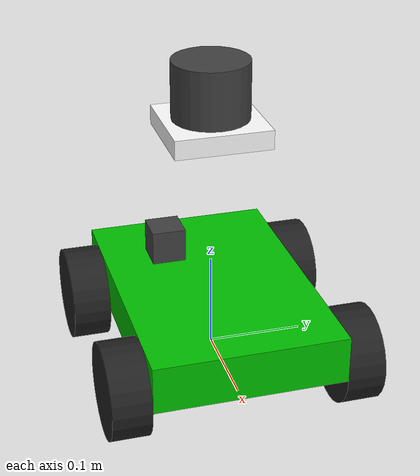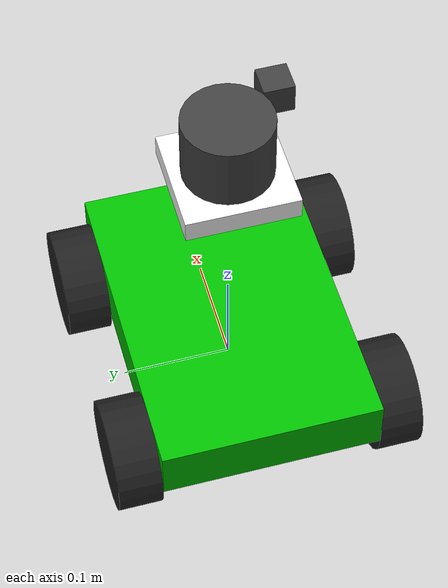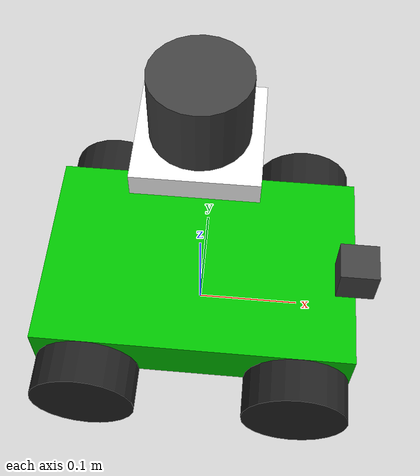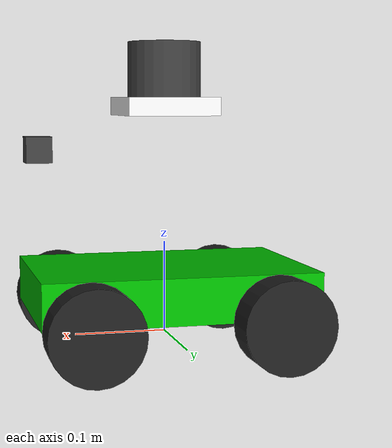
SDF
<sdf version='1.11'>
  <model name='my_robot'>
    <link name='base_footprint'>
      <inertial>
        <pose>0.0028017241379310349 -0.001724137931034483 0.079439655172413803 0 0 0</pose>
        <mass>2.3199999999999998</mass>
        <inertia>
          <ixx>0.023429374999999999</ixx>
          <ixy>0.00050879310344827588</ixy>
          <ixz>-0.0007836422413793104</ixz>
          <iyy>0.023943060344827599</iyy>
          <iyz>0.00048224137931034491</iyz>
          <izz>0.021349892241379311</izz>
        </inertia>
      </inertial>
      <collision name='base_footprint_fixed_joint_lump__base_link_collision'>
        <pose>0 0 0.050000000000000003 0 0 0</pose>
        <geometry>
          <box>
            <size>0.29999999999999999 0.20000000000000001 0.050000000000000003</size>
          </box>
        </geometry>
      </collision>
      <collision name='base_footprint_fixed_joint_lump__lidar_link_collision_1'>
        <pose>0 0 0.28999999999999998 0 0 0</pose>
        <geometry>
          <cylinder>
            <length>0.059999999999999998</length>
            <radius>0.040000000000000001</radius>
          </cylinder>
        </geometry>
        <surface>
          <contact>
            <ode/>
          </contact>
          <friction>
            <ode/>
          </friction>
        </surface>
      </collision>
      <visual name='base_footprint_fixed_joint_lump__base_link_visual'>
        <pose>0 0 0.050000000000000003 0 0 0</pose>
        <geometry>
          <box>
            <size>0.29999999999999999 0.20000000000000001 0.050000000000000003</size>
          </box>
        </geometry>
        <material>
          <diffuse>0 0.75000006 0 1</diffuse>
          <ambient>0 0.75000006 0 1</ambient>
        </material>
      </visual>
      <visual name='base_footprint_fixed_joint_lump__camera_link_visual_1'>
        <pose>0.13 -0.080000000000000002 0.20000000000000001 0 0 0</pose>
        <geometry>
          <box>
            <size>0.029999999999999999 0.029999999999999999 0.029999999999999999</size>
          </box>
        </geometry>
        <material>
          <diffuse>0.25 0.25 0.25 1</diffuse>
          <ambient>0.25 0.25 0.25 1</ambient>
        </material>
      </visual>
      <visual name='base_footprint_fixed_joint_lump__lidar_platform_visual_2'>
        <pose>0 0 0.25 0 0 0</pose>
        <geometry>
          <box>
            <size>0.10000000000000001 0.10000000000000001 0.02</size>
          </box>
        </geometry>
        <material>
          <diffuse>1 1 1 1</diffuse>
          <ambient>1 1 1 1</ambient>
        </material>
      </visual>
      <visual name='base_footprint_fixed_joint_lump__lidar_link_visual_3'>
        <pose>0 0 0.28999999999999998 0 0 0</pose>
        <geometry>
          <cylinder>
            <length>0.059999999999999998</length>
            <radius>0.040000000000000001</radius>
          </cylinder>
        </geometry>
        <material>
          <diffuse>0.25 0.25 0.25 1</diffuse>
          <ambient>0.25 0.25 0.25 1</ambient>
        </material>
      </visual>
      <sensor name='camera' type='camera'>
        <always_on>true</always_on>
        <update_rate>30</update_rate>
        <topic>/camera/image</topic>
        <camera>
          <horizontal_fov>1.3962634</horizontal_fov>
          <image>
            <width>640</width>
            <height>480</height>
            <format>R8G8B8</format>
          </image>
          <clip>
            <near>0.10000000000000001</near>
            <far>10</far>
          </clip>
        </camera>
        <pose>0.13 -0.080000000000000002 0.20000000000000001 0 0 0</pose>
        <gz_frame_id>camera_link</gz_frame_id>
      </sensor>
      <sensor name='lidar' type='gpu_lidar'>
        <always_on>true</always_on>
        <update_rate>10</update_rate>
        <topic>/my_robot/scan</topic>
        <lidar>
          <scan>
            <horizontal>
              <samples>360</samples>
              <resolution>1</resolution>
              <min_angle>-3.14</min_angle>
              <max_angle>3.14</max_angle>
            </horizontal>
          </scan>
          <range>
            <min>0.14999999999999999</min>
            <max>12</max>
            <resolution>0.01</resolution>
          </range>
        </lidar>
        <pose>0 0 0.28999999999999998 0 0 0</pose>
        <gz_frame_id>lidar_link</gz_frame_id>
      </sensor>
    </link>
    <joint name='front_left_wheel_joint' type='revolute'>
      <pose relative_to='base_footprint'>0.10000000000000001 0.12 0.025000000000000001 -1.5707 0 0</pose>
      <parent>base_footprint</parent>
      <child>front_left_wheel</child>
      <axis>
        <xyz>0 0 1</xyz>
        <limit>
          <lower>-inf</lower>
          <upper>inf</upper>
        </limit>
        <dynamics>
          <spring_reference>0</spring_reference>
          <spring_stiffness>0</spring_stiffness>
        </dynamics>
      </axis>
    </joint>
    <link name='front_left_wheel'>
      <pose relative_to='front_left_wheel_joint'>0 0 0 0 0 0</pose>
      <inertial>
        <pose>0 0 0 0 0 0</pose>
        <mass>0.29999999999999999</mass>
        <inertia>
          <ixx>0.001</ixx>
          <ixy>0</ixy>
          <ixz>0</ixz>
          <iyy>0.001</iyy>
          <iyz>0</iyz>
          <izz>0.001</izz>
        </inertia>
      </inertial>
      <collision name='front_left_wheel_collision'>
        <pose>0 0 0 0 0 0</pose>
        <geometry>
          <cylinder>
            <length>0.040000000000000001</length>
            <radius>0.050000000000000003</radius>
          </cylinder>
        </geometry>
      </collision>
      <visual name='front_left_wheel_visual'>
        <pose>0 0 0 0 0 0</pose>
        <geometry>
          <cylinder>
            <length>0.040000000000000001</length>
            <radius>0.050000000000000003</radius>
          </cylinder>
        </geometry>
        <material>
          <diffuse>0.125 0.125 0.125 1</diffuse>
          <ambient>0.125 0.125 0.125 1</ambient>
        </material>
      </visual>
    </link>
    <joint name='front_right_wheel_joint' type='revolute'>
      <pose relative_to='base_footprint'>0.10000000000000001 -0.12 0.025000000000000001 -1.5707 0 0</pose>
      <parent>base_footprint</parent>
      <child>front_right_wheel</child>
      <axis>
        <xyz>0 0 1</xyz>
        <limit>
          <lower>-inf</lower>
          <upper>inf</upper>
        </limit>
        <dynamics>
          <spring_reference>0</spring_reference>
          <spring_stiffness>0</spring_stiffness>
        </dynamics>
      </axis>
    </joint>
    <link name='front_right_wheel'>
      <pose relative_to='front_right_wheel_joint'>0 0 0 0 0 0</pose>
      <inertial>
        <pose>0 0 0 0 0 0</pose>
        <mass>0.29999999999999999</mass>
        <inertia>
          <ixx>0.001</ixx>
          <ixy>0</ixy>
          <ixz>0</ixz>
          <iyy>0.001</iyy>
          <iyz>0</iyz>
          <izz>0.001</izz>
        </inertia>
      </inertial>
      <collision name='front_right_wheel_collision'>
        <pose>0 0 0 0 0 0</pose>
        <geometry>
          <cylinder>
            <length>0.040000000000000001</length>
            <radius>0.050000000000000003</radius>
          </cylinder>
        </geometry>
      </collision>
      <visual name='front_right_wheel_visual'>
        <pose>0 0 0 0 0 0</pose>
        <geometry>
          <cylinder>
            <length>0.040000000000000001</length>
            <radius>0.050000000000000003</radius>
          </cylinder>
        </geometry>
        <material>
          <diffuse>0.125 0.125 0.125 1</diffuse>
          <ambient>0.125 0.125 0.125 1</ambient>
        </material>
      </visual>
    </link>
    <joint name='rear_left_wheel_joint' type='revolute'>
      <pose relative_to='base_footprint'>-0.10000000000000001 0.12 0.025000000000000001 -1.5707 0 0</pose>
      <parent>base_footprint</parent>
      <child>rear_left_wheel</child>
      <axis>
        <xyz>0 0 1</xyz>
        <limit>
          <lower>-inf</lower>
          <upper>inf</upper>
        </limit>
        <dynamics>
          <spring_reference>0</spring_reference>
          <spring_stiffness>0</spring_stiffness>
        </dynamics>
      </axis>
    </joint>
    <link name='rear_left_wheel'>
      <pose relative_to='rear_left_wheel_joint'>0 0 0 0 0 0</pose>
      <inertial>
        <pose>0 0 0 0 0 0</pose>
        <mass>0.29999999999999999</mass>
        <inertia>
          <ixx>0.001</ixx>
          <ixy>0</ixy>
          <ixz>0</ixz>
          <iyy>0.001</iyy>
          <iyz>0</iyz>
          <izz>0.001</izz>
        </inertia>
      </inertial>
      <collision name='rear_left_wheel_collision'>
        <pose>0 0 0 0 0 0</pose>
        <geometry>
          <cylinder>
            <length>0.040000000000000001</length>
            <radius>0.050000000000000003</radius>
          </cylinder>
        </geometry>
      </collision>
      <visual name='rear_left_wheel_visual'>
        <pose>0 0 0 0 0 0</pose>
        <geometry>
          <cylinder>
            <length>0.040000000000000001</length>
            <radius>0.050000000000000003</radius>
          </cylinder>
        </geometry>
        <material>
          <diffuse>0.125 0.125 0.125 1</diffuse>
          <ambient>0.125 0.125 0.125 1</ambient>
        </material>
      </visual>
    </link>
    <joint name='rear_right_wheel_joint' type='revolute'>
      <pose relative_to='base_footprint'>-0.10000000000000001 -0.12 0.025000000000000001 -1.5707 0 0</pose>
      <parent>base_footprint</parent>
      <child>rear_right_wheel</child>
      <axis>
        <xyz>0 0 1</xyz>
        <limit>
          <lower>-inf</lower>
          <upper>inf</upper>
        </limit>
        <dynamics>
          <spring_reference>0</spring_reference>
          <spring_stiffness>0</spring_stiffness>
        </dynamics>
      </axis>
    </joint>
    <link name='rear_right_wheel'>
      <pose relative_to='rear_right_wheel_joint'>0 0 0 0 0 0</pose>
      <inertial>
        <pose>0 0 0 0 0 0</pose>
        <mass>0.29999999999999999</mass>
        <inertia>
          <ixx>0.001</ixx>
          <ixy>0</ixy>
          <ixz>0</ixz>
          <iyy>0.001</iyy>
          <iyz>0</iyz>
          <izz>0.001</izz>
        </inertia>
      </inertial>
      <collision name='rear_right_wheel_collision'>
        <pose>0 0 0 0 0 0</pose>
        <geometry>
          <cylinder>
            <length>0.040000000000000001</length>
            <radius>0.050000000000000003</radius>
          </cylinder>
        </geometry>
      </collision>
      <visual name='rear_right_wheel_visual'>
        <pose>0 0 0 0 0 0</pose>
        <geometry>
          <cylinder>
            <length>0.040000000000000001</length>
            <radius>0.050000000000000003</radius>
          </cylinder>
        </geometry>
        <material>
          <diffuse>0.125 0.125 0.125 1</diffuse>
          <ambient>0.125 0.125 0.125 1</ambient>
        </material>
      </visual>
    </link>
    <plugin name='gz::sim::systems::DiffDrive' filename='gz-sim-diff-drive-system'>
      <num_wheel_pairs>2</num_wheel_pairs>
      <left_joint>front_left_wheel_joint</left_joint>
      <left_joint>rear_left_wheel_joint</left_joint>
      <right_joint>front_right_wheel_joint</right_joint>
      <right_joint>rear_right_wheel_joint</right_joint>
      <wheel_separation>0.24</wheel_separation>
      <wheel_radius>0.05</wheel_radius>
      <max_wheel_torque>20</max_wheel_torque>
      <max_wheel_acceleration>1.0</max_wheel_acceleration>
      <topic>/cmd_vel</topic>
      <odom_topic>/odom</odom_topic>
      <frame_id>odom</frame_id>
      <child_frame_id>base_link</child_frame_id>
      <odom_publish_frequency>10</odom_publish_frequency>
    </plugin>
    <plugin name='gz::sim::systems::JointStatePublisher' filename='gz-sim-joint-state-publisher-system'>
      <topic>/joint_states</topic>
    </plugin>
    <plugin name='gz::sim::systems::DiffDrive' filename='gz-sim-diff-drive-system'>
      <left_joint>front_left_wheel_joint</left_joint>
      <left_joint>rear_left_wheel_joint</left_joint>
      <right_joint>front_right_wheel_joint</right_joint>
      <right_joint>rear_right_wheel_joint</right_joint>
      <wheel_separation>0.24</wheel_separation>
      <wheel_radius>0.05</wheel_radius>
      <topic>/my_robot/cmd_vel</topic>
      <odom_topic>/odom</odom_topic>
      <frame_id>odom</frame_id>
      <child_frame_id>base_footprint</child_frame_id>
    </plugin>
    <frame name='camera_joint' attached_to='base_link'>
      <pose>0.13 -0.080000000000000002 0.14999999999999999 0 0 0</pose>
    </frame>
    <frame name='camera_link' attached_to='camera_joint'>
      <pose>0 0 0 0 0 0</pose>
    </frame>
    <frame name='lidar_joint' attached_to='lidar_platform'>
      <pose>0 0 0.040000000000000001 0 0 0</pose>
    </frame>
    <frame name='lidar_link' attached_to='lidar_joint'>
      <pose>0 0 0 0 0 0</pose>
    </frame>
    <frame name='
lidar_platform_joint' attached_to='base_link'>
      <pose>0 0 0.20000000000000001 0 0 0</pose>
    </frame>
    <frame name='lidar_platform' attached_to='lidar_platform_joint'>
      <pose>0 0 0 0 0 0</pose>
    </frame>
    <frame name='base_footprint_joint' attached_to='base_footprint'>
      <pose>0 0 0.050000000000000003 0 0 0</pose>
    </frame>
    <frame name='base_link' attached_to='base_footprint_joint'>
      <pose>0 0 0 0 0 0</pose>
    </frame>
  </model>
</sdf>
